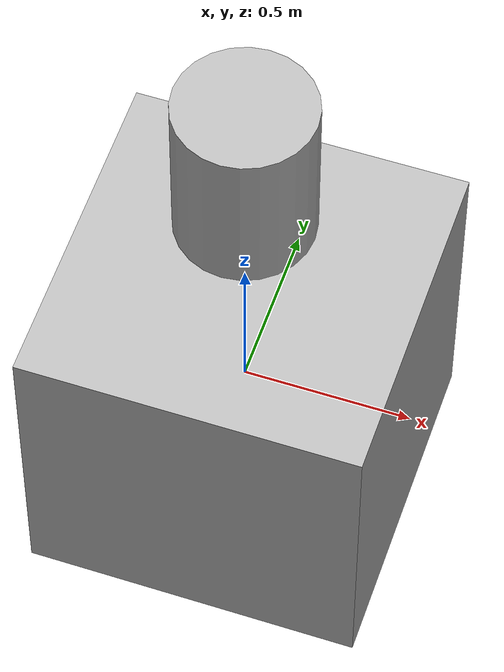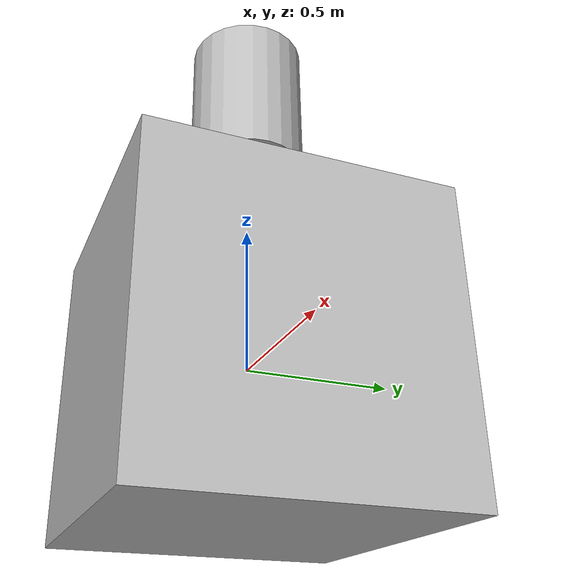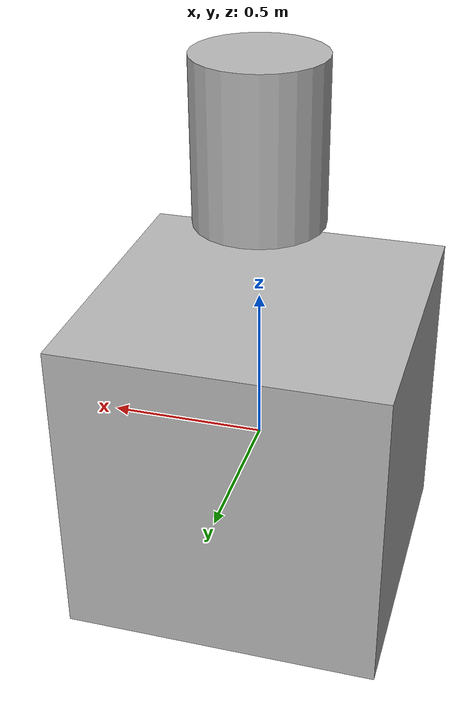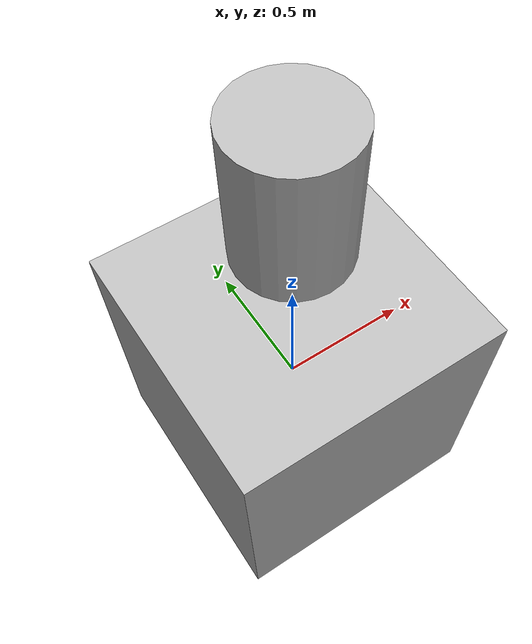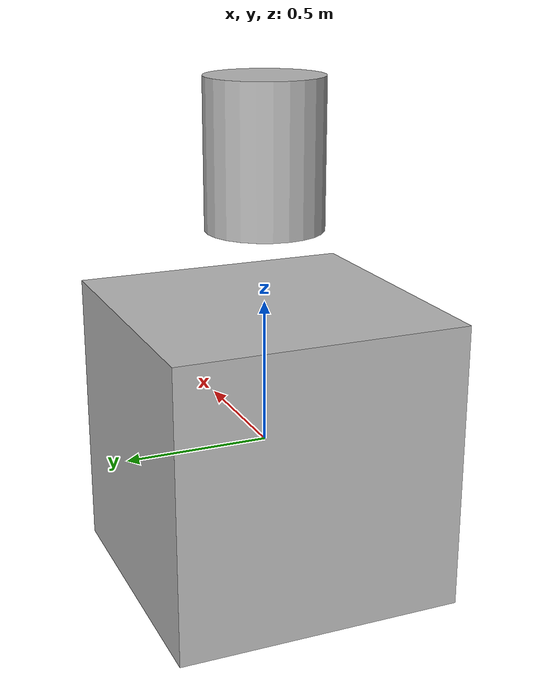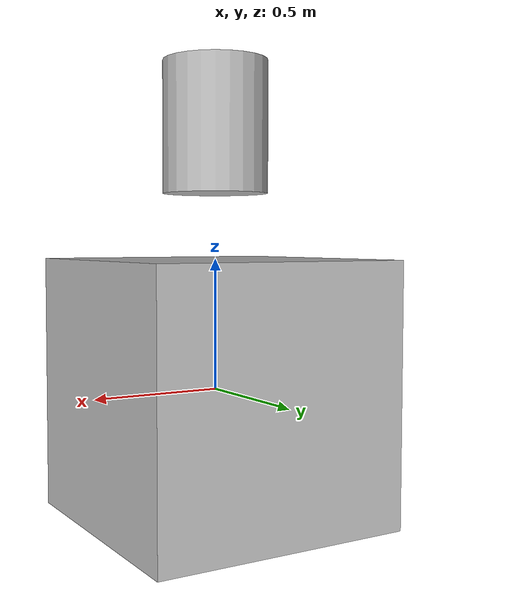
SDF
<?xml version="1.0" ?>
<sdf version="1.7">
  <model name="simple_model">
    <link name="base_link">
      <inertial>
        <mass>1.0</mass>
        <inertia>
          <ixx>0.1</ixx>
          <ixy>0.0</ixy>
          <ixz>0.0</ixz>
          <iyy>0.1</iyy>
          <iyz>0.0</iyz>
          <izz>0.1</izz>
        </inertia>
      </inertial>
      <collision name="collision">
        <geometry>
          <box>
            <size>1 1 1</size>
          </box>
        </geometry>
      </collision>
      <visual name="visual">
        <geometry>
          <box>
            <size>1 1 1</size>
          </box>
        </geometry>
      </visual>
    </link>

    <link name="link1">
      <pose>0 0 1 0 0 0</pose>
      <inertial>
        <mass>0.5</mass>
        <inertia>
          <ixx>0.05</ixx>
          <ixy>0.0</ixy>
          <ixz>0.0</ixz>
          <iyy>0.05</iyy>
          <iyz>0.0</iyz>
          <izz>0.05</izz>
        </inertia>
      </inertial>
      <collision name="collision">
        <geometry>
          <cylinder>
            <radius>0.2</radius>
            <length>0.5</length>
          </cylinder>
        </geometry>
      </collision>
      <visual name="visual">
        <geometry>
          <cylinder>
            <radius>0.2</radius>
            <length>0.5</length>
          </cylinder>
        </geometry>
      </visual>
    </link>

    <joint name="joint1" type="revolute">
      <parent>base_link</parent>
      <child>link1</child>
      <axis>
        <xyz>0 0 1</xyz>
        <limit>
          <lower>-1.57</lower>
          <upper>1.57</upper>
        </limit>
      </axis>
    </joint>
  </model>
</sdf>
